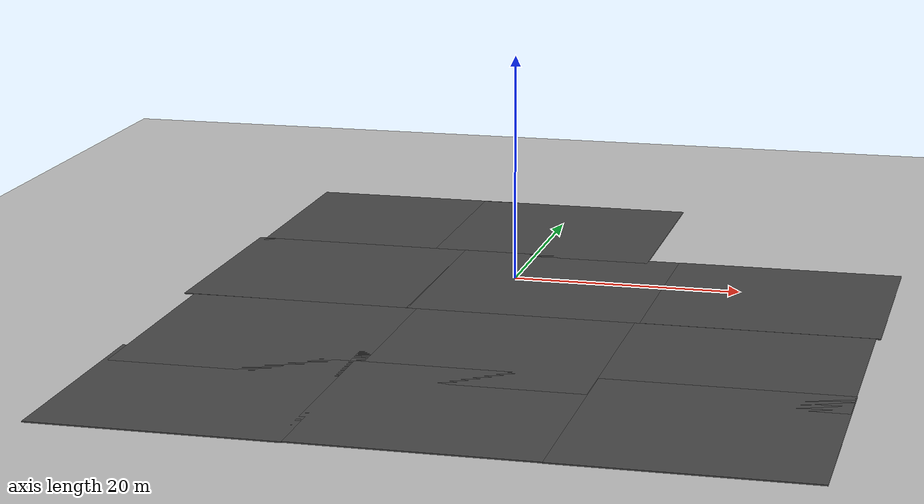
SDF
<sdf version="1.6">
 <world name="default">
  <light name="sun" type="directional">
   <pose>0 0 10 0 -0 0</pose>
   <diffuse>0.8 0.8 0.8 1</diffuse>
   <specular>0.2 0.2 0.2 1</specular>
   <attenuation>
    <range>1000</range>
    <constant>0.9</constant>
    <linear>0.01</linear>
    <quadratic>0.001</quadratic>
   </attenuation>
   <direction>-0.5 0.1 -0.9</direction>
  </light>
  <model name="ground_plane">
   <static>1</static>
   <link name="link">
    <collision name="collision">
     <geometry><plane><normal>0 0 1</normal><size>100 100</size></plane></geometry>
     <surface>
      <contact><collide_bitmask>65535</collide_bitmask></contact>
      <friction><ode><mu>100</mu><mu2>50</mu2></ode></friction>
     </surface>
    </collision>
    <visual name="visual">
     <cast_shadows>0</cast_shadows>
     <geometry><plane><normal>0 0 1</normal><size>100 100</size></plane></geometry>
     <material>
      <script><uri>file://media/materials/scripts/gazebo.material</uri><name>Gazebo/Grey</name></script>
     </material>
    </visual>
   </link>
  </model>
  <gravity>0 0 -9.8</gravity>
  <magnetic_field>6e-06 2.3e-05 -4.2e-05</magnetic_field>
  <atmosphere type="adiabatic"/>
  <physics name="default_physics" default="0" type="ode">
   <max_step_size>0.001</max_step_size>
   <real_time_factor>1</real_time_factor>
   <real_time_update_rate>1000</real_time_update_rate>
  </physics>
  <scene><ambient>0.4 0.4 0.4 1</ambient><background>0.7 0.7 0.7 1</background><shadows>1</shadows></scene>
  <audio><device>default</device></audio>
  <spherical_coordinates>
   <surface_model>EARTH_WGS84</surface_model>
   <latitude_deg>0</latitude_deg>
   <longitude_deg>0</longitude_deg>
   <elevation>0</elevation>
   <heading_deg>0</heading_deg>
  </spherical_coordinates>
  <model name="asphalt_plane">
   <static>1</static>
   <link name="link">
    <collision name="collision"><geometry><box><size>20 20 0.1</size></box></geometry></collision>
    <visual name="visual">
     <cast_shadows>0</cast_shadows>
     <geometry><box><size>20 20 0.1</size></box></geometry>
     <material>
      <script>
       <uri>model://asphalt_plane/materials/scripts</uri>
       <uri>model://asphalt_plane/materials/textures</uri>
       <name>vrc/asphalt</name>
      </script>
     </material>
    </visual>
   </link>
   <pose>-16.7172 -1.64386 0 0 -0 1.56291</pose>
  </model>
  <model name="asphalt_plane_0">
   <static>1</static>
   <link name="link">
    <collision name="collision"><geometry><box><size>20 20 0.1</size></box></geometry></collision>
    <visual name="visual">
     <cast_shadows>0</cast_shadows>
     <geometry><box><size>20 20 0.1</size></box></geometry>
     <material>
      <script>
       <uri>model://asphalt_plane/materials/scripts</uri>
       <uri>model://asphalt_plane/materials/textures</uri>
       <name>vrc/asphalt</name>
      </script>
     </material>
    </visual>
   </link>
   <pose>3.33315 -1.67226 0 0 -0 0</pose>
  </model>
  <model name="asphalt_plane_1">
   <static>1</static>
   <link name="link">
    <collision name="collision"><geometry><box><size>20 20 0.1</size></box></geometry></collision>
    <visual name="visual">
     <cast_shadows>0</cast_shadows>
     <geometry><box><size>20 20 0.1</size></box></geometry>
     <material>
      <script>
       <uri>model://asphalt_plane/materials/scripts</uri>
       <uri>model://asphalt_plane/materials/textures</uri>
       <name>vrc/asphalt</name>
      </script>
     </material>
    </visual>
   </link>
   <pose>23.3201 -1.63043 0 0 -0 0</pose>
  </model>
  <model name="asphalt_plane_2">
   <static>1</static>
   <link name="link">
    <collision name="collision"><geometry><box><size>20 20 0.1</size></box></geometry></collision>
    <visual name="visual">
     <cast_shadows>0</cast_shadows>
     <geometry><box><size>20 20 0.1</size></box></geometry>
     <material>
      <script>
       <uri>model://asphalt_plane/materials/scripts</uri>
       <uri>model://asphalt_plane/materials/textures</uri>
       <name>vrc/asphalt</name>
      </script>
     </material>
    </visual>
   </link>
   <pose>0.514525 17.4803 0 0 -0 0</pose>
  </model>
  <model name="asphalt_plane_0_clone">
   <static>1</static>
   <link name="link">
    <collision name="collision"><geometry><box><size>20 20 0.1</size></box></geometry></collision>
    <visual name="visual">
     <cast_shadows>0</cast_shadows>
     <geometry><box><size>20 20 0.1</size></box></geometry>
     <material>
      <script>
       <uri>model://asphalt_plane/materials/scripts</uri>
       <uri>model://asphalt_plane/materials/textures</uri>
       <name>vrc/asphalt</name>
      </script>
     </material>
    </visual>
   </link>
   <pose>-15.8734 -21.6302 0 0 -0 0</pose>
  </model>
  <model name="asphalt_plane_0_clone_0">
   <static>1</static>
   <link name="link">
    <collision name="collision"><geometry><box><size>20 20 0.1</size></box></geometry></collision>
    <visual name="visual">
     <cast_shadows>0</cast_shadows>
     <geometry><box><size>20 20 0.1</size></box></geometry>
     <material>
      <script>
       <uri>model://asphalt_plane/materials/scripts</uri>
       <uri>model://asphalt_plane/materials/textures</uri>
       <name>vrc/asphalt</name>
      </script>
     </material>
    </visual>
   </link>
   <pose>2.93384 -21.5432 0 0 -0 0</pose>
  </model>
  <model name="asphalt_plane_0_clone_1">
   <static>1</static>
   <link name="link">
    <collision name="collision"><geometry><box><size>20 20 0.1</size></box></geometry></collision>
    <visual name="visual">
     <cast_shadows>0</cast_shadows>
     <geometry><box><size>20 20 0.1</size></box></geometry>
     <material>
      <script>
       <uri>model://asphalt_plane/materials/scripts</uri>
       <uri>model://asphalt_plane/materials/textures</uri>
       <name>vrc/asphalt</name>
      </script>
     </material>
    </visual>
   </link>
   <pose>22.9279 -21.6535 0 0 -0 0</pose>
  </model>
  <model name="asphalt_plane_0_clone_2">
   <static>1</static>
   <link name="link">
    <collision name="collision"><geometry><box><size>20 20 0.1</size></box></geometry></collision>
    <visual name="visual">
     <cast_shadows>0</cast_shadows>
     <geometry><box><size>20 20 0.1</size></box></geometry>
     <material>
      <script>
       <uri>model://asphalt_plane/materials/scripts</uri>
       <uri>model://asphalt_plane/materials/textures</uri>
       <name>vrc/asphalt</name>
      </script>
     </material>
    </visual>
   </link>
   <pose>-16.2295 -37.3667 0 0 -0 0</pose>
  </model>
  <model name="asphalt_plane_0_clone_3">
   <static>1</static>
   <link name="link">
    <collision name="collision"><geometry><box><size>20 20 0.1</size></box></geometry></collision>
    <visual name="visual">
     <cast_shadows>0</cast_shadows>
     <geometry><box><size>20 20 0.1</size></box></geometry>
     <material>
      <script>
       <uri>model://asphalt_plane/materials/scripts</uri>
       <uri>model://asphalt_plane/materials/textures</uri>
       <name>vrc/asphalt</name>
      </script>
     </material>
    </visual>
   </link>
   <pose>3.25662 -37.2818 0 0 -0 0</pose>
  </model>
  <model name="asphalt_plane_0_clone_4">
   <static>1</static>
   <link name="link">
    <collision name="collision"><geometry><box><size>20 20 0.1</size></box></geometry></collision>
    <visual name="visual">
     <cast_shadows>0</cast_shadows>
     <geometry><box><size>20 20 0.1</size></box></geometry>
     <material>
      <script>
       <uri>model://asphalt_plane/materials/scripts</uri>
       <uri>model://asphalt_plane/materials/textures</uri>
       <name>vrc/asphalt</name>
      </script>
     </material>
    </visual>
   </link>
   <pose>22.9792 -37.3349 0 0 -0 0</pose>
  </model>
  <model name="asphalt_plane_0_clone_5">
   <static>1</static>
   <link name="link">
    <collision name="collision"><geometry><box><size>20 20 0.1</size></box></geometry></collision>
    <visual name="visual">
     <cast_shadows>0</cast_shadows>
     <geometry><box><size>20 20 0.1</size></box></geometry>
     <material>
      <script>
       <uri>model://asphalt_plane/materials/scripts</uri>
       <uri>model://asphalt_plane/materials/textures</uri>
       <name>vrc/asphalt</name>
      </script>
     </material>
    </visual>
   </link>
   <pose>-16.0388 17.554 0 0 -0 0</pose>
  </model>
 </world>
</sdf>
